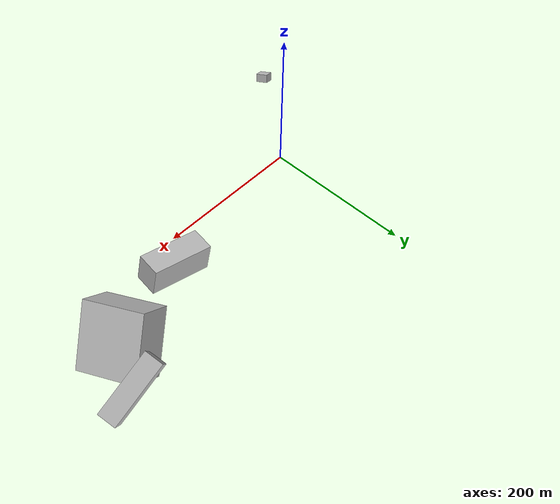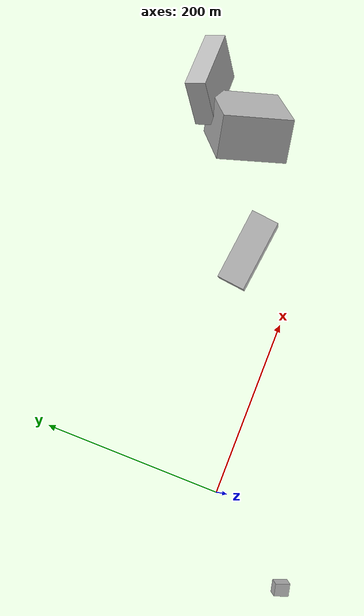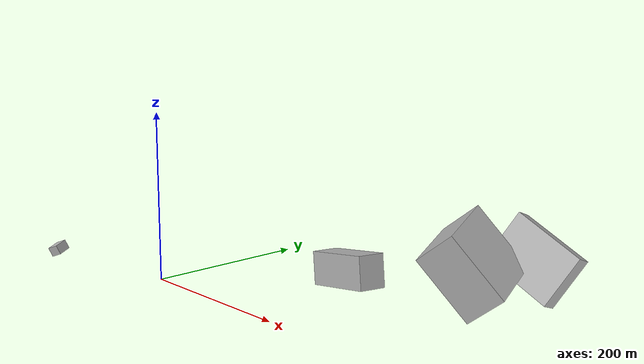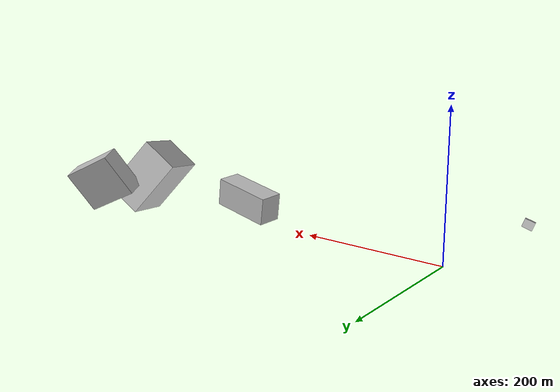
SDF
<sdf version="1.6">
 <world name="default">
  <scene>
   <sky><clouds><speed>12</speed></clouds></sky>
   <ambient>0.4 0.4 0.4 1</ambient>
   <background>0.7 0.7 0.7 1</background>
   <shadows>1</shadows>
  </scene>
  <gravity>0 0 -9.8066</gravity>
  <magnetic_field>6e-06 2.3e-05 -4.2e-05</magnetic_field>
  <physics default="0" name="default_physics" type="ode">
   <ode>
    <solver>
     <type>quick</type>
     <iters>10</iters>
     <sor>1.0</sor>
     <use_dynamic_moi_rescaling>0</use_dynamic_moi_rescaling>
    </solver>
    <constraints>
     <cfm>0</cfm>
     <erp>0.2</erp>
     <contact_max_correcting_vel>100</contact_max_correcting_vel>
     <contact_surface_layer>0.001</contact_surface_layer>
    </constraints>
   </ode>
   <max_step_size>0.004</max_step_size>
   <real_time_factor>1</real_time_factor>
   <real_time_update_rate>250</real_time_update_rate>
  </physics>
  <light name="sun" type="directional">
   <pose>0 0 10 0 0 0</pose>
   <diffuse>0.8 0.8 0.8 1</diffuse>
   <specular>0.2 0.2 0.2 1</specular>
   <attenuation>
    <range>1000</range>
    <constant>0.9</constant>
    <linear>0.01</linear>
    <quadratic>0.001</quadratic>
   </attenuation>
   <direction>-0.5 0.1 -0.9</direction>
  </light>
  <model name="building_1">
   <static>0</static>
   <pose>448.37812135593003 171.24578600759443 64.39748636066354 1.094846227321585 -0.34430299917937696 -1.3570352689038558</pose>
   <link name="link">
    <gravity>0</gravity>
    <pose>0 0 40.0 0 0 0</pose>
    <collision name="collision"><geometry><box><size>23 58 80</size></box></geometry></collision>
    <visual name="visual">
     <cast_shadows>0</cast_shadows>
     <geometry><box><size>23 58 80</size></box></geometry>
     <material>
      <script>
       <uri>model://HANNAS_wall/materials/scripts</uri>
       <uri>model://HANNAS_wall/materials/textures</uri>
       <name>vrc/HANNAS_wall</name>
      </script>
     </material>
    </visual>
   </link>
  </model>
  <model name="building_2">
   <static>0</static>
   <pose>359.72305253342915 109.04090643850242 65.82531576724044 0.8842276012561381 -0.1873610839319095 1.9309924607584967</pose>
   <link name="link">
    <gravity>0</gravity>
    <pose>0 0 24.5 0 0 0</pose>
    <collision name="collision"><geometry><box><size>77 80 49</size></box></geometry></collision>
    <visual name="visual">
     <cast_shadows>0</cast_shadows>
     <geometry><box><size>77 80 49</size></box></geometry>
     <material>
      <script>
       <uri>model://HANNAS_wall/materials/scripts</uri>
       <uri>model://HANNAS_wall/materials/textures</uri>
       <name>vrc/HANNAS_wall</name>
      </script>
     </material>
    </visual>
   </link>
  </model>
  <model name="building_3">
   <static>0</static>
   <pose>256.53795868398885 62.1193305370237 39.79717182609562 0.1613780021144071 -0.04023616333715414 -1.6934215838944844</pose>
   <link name="link">
    <gravity>0</gravity>
    <pose>0 0 18.0 0 0 0</pose>
    <collision name="collision"><geometry><box><size>31 80 36</size></box></geometry></collision>
    <visual name="visual">
     <cast_shadows>0</cast_shadows>
     <geometry><box><size>31 80 36</size></box></geometry>
     <material>
      <script>
       <uri>model://HANNAS_wall/materials/scripts</uri>
       <uri>model://HANNAS_wall/materials/textures</uri>
       <name>vrc/HANNAS_wall</name>
      </script>
     </material>
    </visual>
   </link>
  </model>
  <model name="building_4">
   <static>0</static>
   <pose>-65.40960745059326 -103.50300962706993 40.33053328995514 -1.0053662980553832 1.13251153538497 0.8615366979710389</pose>
   <link name="link">
    <gravity>0</gravity>
    <pose>0 0 8.0 0 0 0</pose>
    <collision name="collision"><geometry><box><size>11 14 16</size></box></geometry></collision>
    <visual name="visual">
     <cast_shadows>0</cast_shadows>
     <geometry><box><size>11 14 16</size></box></geometry>
     <material>
      <script>
       <uri>model://HANNAS_wall/materials/scripts</uri>
       <uri>model://HANNAS_wall/materials/textures</uri>
       <name>vrc/HANNAS_wall</name>
      </script>
     </material>
    </visual>
   </link>
  </model>
 </world>
</sdf>
